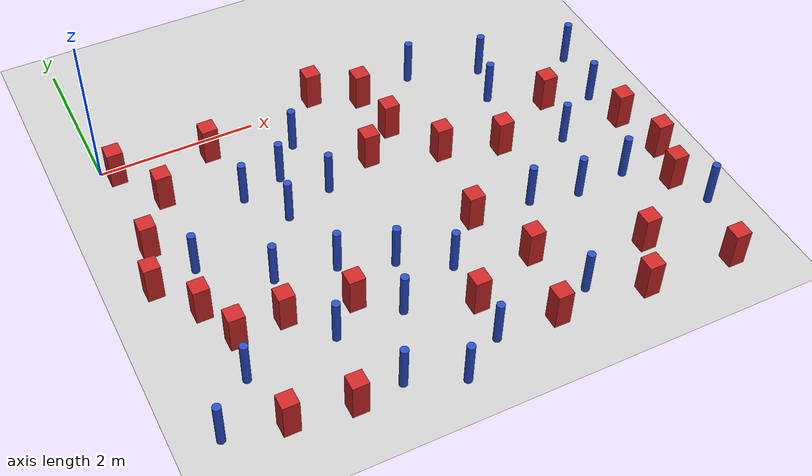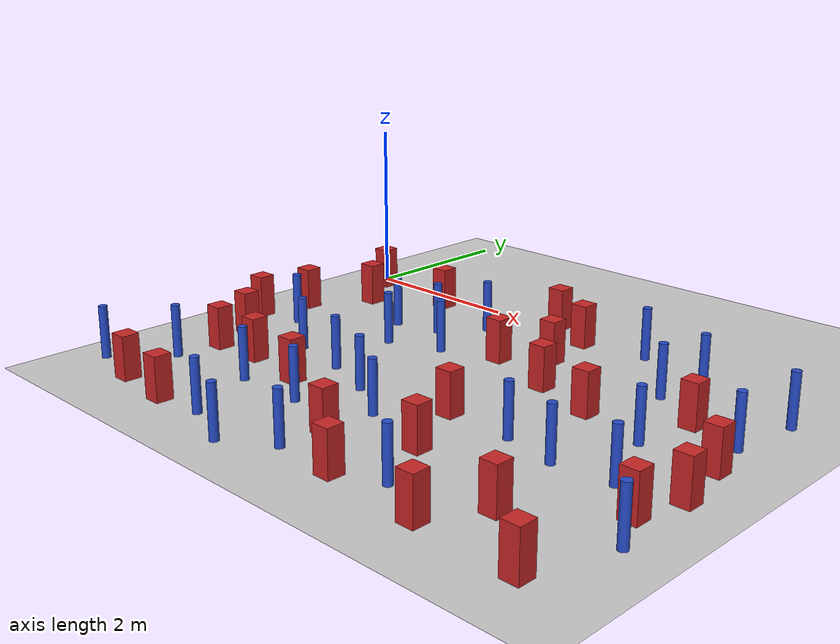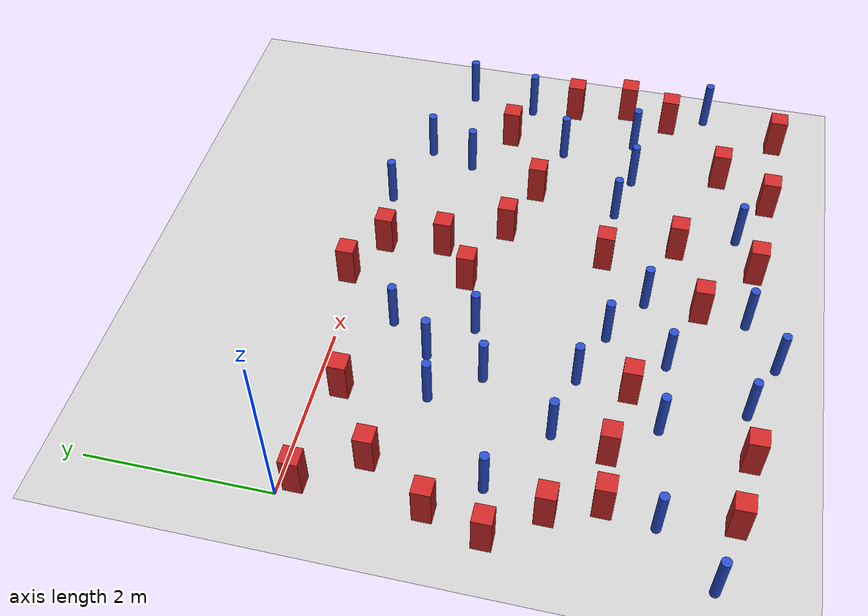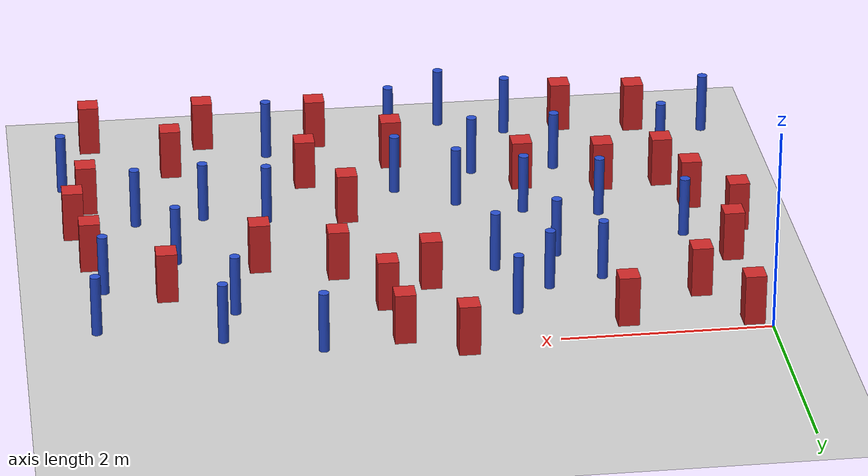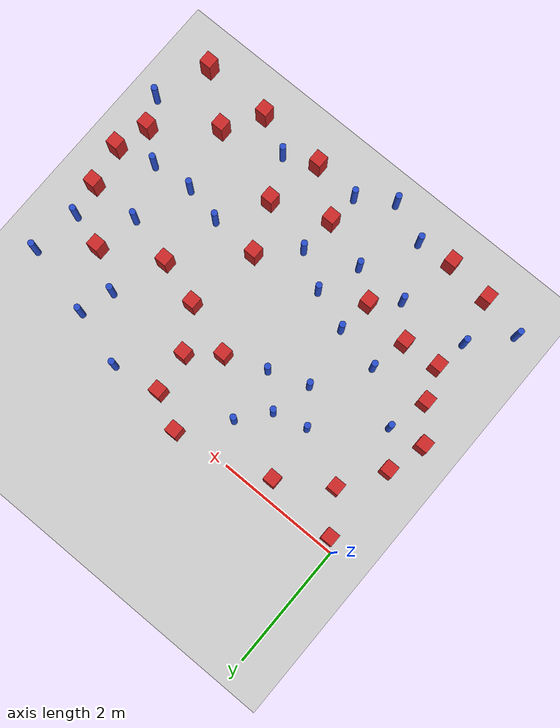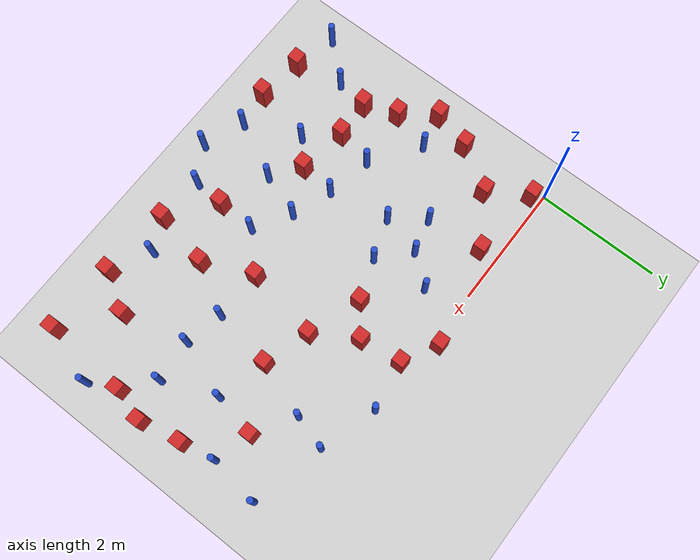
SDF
<sdf version="1.6">
 <world name="default">
  <model name="ground_plane">
   <static>1</static>
   <link name="link">
    <collision name="collision">
     <geometry><plane><normal>0 0 1</normal><size>100 100</size></plane></geometry>
     <surface><friction><ode><mu>100</mu><mu2>50</mu2></ode></friction></surface>
    </collision>
    <visual name="visual">
     <cast_shadows>0</cast_shadows>
     <geometry><plane><normal>0 0 1</normal><size>100 100</size></plane></geometry>
     <material>
      <ambient>1.0 1.0 1.0 1.0</ambient>
      <diffuse>0.8 0.8 0.8 1.0</diffuse>
      <specular>0.01 0.01 0.01 1.000000</specular>
     </material>
    </visual>
   </link>
  </model>
  <model name="NamedLocations">
   <static>true</static>
   <link name="DefaultStart"><pose>8.5 0 0 0 0 3.14</pose></link>
  </model>
  <model name="pole_obstacle6">
   <static>true</static>
   <pose>6.27253599688 -0.637736351606 2.88873142074e-08 -9.90536689837e-09 4.60219948989e-07 -1.2096599496e-07</pose>
   <link name="link">
    <pose>0 0 0.3 0 -0 0</pose>
    <inertial>
     <mass>1</mass>
     <inertia><ixx>0.145833</ixx><ixy>0</ixy><ixz>0</ixz><iyy>0.145833</iyy><iyz>0</iyz><izz>0.125</izz></inertia>
    </inertial>
    <collision name="collision">
     <geometry><cylinder><radius>0.05</radius><length>.6</length></cylinder></geometry>
    </collision>
    <visual name="visual">
     <geometry><cylinder><radius>0.05</radius><length>.6</length></cylinder></geometry>
     <material>
      <script><name>Gazebo/Blue</name><uri>file://media/materials/scripts/gazebo.material</uri></script>
     </material>
    </visual>
   </link>
  </model>
  <model name="square_post_obstacle11">
   <static>true</static>
   <pose>3.44342406219 -0.192606901467 8.22691968438e-08 7.2212513382e-06 -7.54495500217e-07 2.29674213826e-05</pose>
   <link name="link">
    <pose>0 0 0.25 0 -0 0</pose>
    <inertial>
     <mass>100</mass>
     <inertia>
      <ixx>0.166667</ixx>
      <ixy>0</ixy>
      <ixz>0</ixz>
      <iyy>0.166667</iyy>
      <iyz>0</iyz>
      <izz>0.166667</izz>
     </inertia>
    </inertial>
    <collision name="collision"><geometry><box><size>.2 .2 .5</size></box></geometry></collision>
    <visual name="visual">
     <geometry><box><size>.2 .2 .5</size></box></geometry>
     <material>
      <script><name>Gazebo/Red</name><uri>file://media/materials/scripts/gazebo.material</uri></script>
     </material>
    </visual>
   </link>
  </model>
  <model name="pole_obstacle15">
   <static>true</static>
   <pose>4.20658721971 -0.0656060145119 2.88873142074e-08 -9.90536689153e-09 4.60219949006e-07 -1.20965994951e-07</pose>
   <link name="link">
    <pose>0 0 0.3 0 -0 0</pose>
    <inertial>
     <mass>1</mass>
     <inertia><ixx>0.145833</ixx><ixy>0</ixy><ixz>0</ixz><iyy>0.145833</iyy><iyz>0</iyz><izz>0.125</izz></inertia>
    </inertial>
    <collision name="collision">
     <geometry><cylinder><radius>0.05</radius><length>.6</length></cylinder></geometry>
    </collision>
    <visual name="visual">
     <geometry><cylinder><radius>0.05</radius><length>.6</length></cylinder></geometry>
     <material>
      <script><name>Gazebo/Blue</name><uri>file://media/materials/scripts/gazebo.material</uri></script>
     </material>
    </visual>
   </link>
  </model>
  <model name="pole_obstacle16">
   <static>true</static>
   <pose>6.44915126913 -3.62196301448 2.88873142074e-08 -9.90536690245e-09 4.6021994898e-07 -1.20965994966e-07</pose>
   <link name="link">
    <pose>0 0 0.3 0 -0 0</pose>
    <inertial>
     <mass>1</mass>
     <inertia><ixx>0.145833</ixx><ixy>0</ixy><ixz>0</ixz><iyy>0.145833</iyy><iyz>0</iyz><izz>0.125</izz></inertia>
    </inertial>
    <collision name="collision">
     <geometry><cylinder><radius>0.05</radius><length>.6</length></cylinder></geometry>
    </collision>
    <visual name="visual">
     <geometry><cylinder><radius>0.05</radius><length>.6</length></cylinder></geometry>
     <material>
      <script><name>Gazebo/Blue</name><uri>file://media/materials/scripts/gazebo.material</uri></script>
     </material>
    </visual>
   </link>
  </model>
  <model name="square_post_obstacle18">
   <static>true</static>
   <pose>0.53533978241 -3.11377711182 8.22691968438e-08 7.2212513382e-06 -7.54495500217e-07 2.29674213826e-05</pose>
   <link name="link">
    <pose>0 0 0.25 0 -0 0</pose>
    <inertial>
     <mass>100</mass>
     <inertia>
      <ixx>0.166667</ixx>
      <ixy>0</ixy>
      <ixz>0</ixz>
      <iyy>0.166667</iyy>
      <iyz>0</iyz>
      <izz>0.166667</izz>
     </inertia>
    </inertial>
    <collision name="collision"><geometry><box><size>.2 .2 .5</size></box></geometry></collision>
    <visual name="visual">
     <geometry><box><size>.2 .2 .5</size></box></geometry>
     <material>
      <script><name>Gazebo/Red</name><uri>file://media/materials/scripts/gazebo.material</uri></script>
     </material>
    </visual>
   </link>
  </model>
  <model name="pole_obstacle26">
   <static>true</static>
   <pose>0.443160769518 -3.63857379925 2.88873142074e-08 -9.90536689663e-09 4.60219948993e-07 -1.20965994959e-07</pose>
   <link name="link">
    <pose>0 0 0.3 0 -0 0</pose>
    <inertial>
     <mass>1</mass>
     <inertia><ixx>0.145833</ixx><ixy>0</ixy><ixz>0</ixz><iyy>0.145833</iyy><iyz>0</iyz><izz>0.125</izz></inertia>
    </inertial>
    <collision name="collision">
     <geometry><cylinder><radius>0.05</radius><length>.6</length></cylinder></geometry>
    </collision>
    <visual name="visual">
     <geometry><cylinder><radius>0.05</radius><length>.6</length></cylinder></geometry>
     <material>
      <script><name>Gazebo/Blue</name><uri>file://media/materials/scripts/gazebo.material</uri></script>
     </material>
    </visual>
   </link>
  </model>
  <model name="pole_obstacle27">
   <static>true</static>
   <pose>1.25044944178 -2.49611178456 2.88873142074e-08 -9.90536689791e-09 4.6021994899e-07 -1.20965994959e-07</pose>
   <link name="link">
    <pose>0 0 0.3 0 -0 0</pose>
    <inertial>
     <mass>1</mass>
     <inertia><ixx>0.145833</ixx><ixy>0</ixy><ixz>0</ixz><iyy>0.145833</iyy><iyz>0</iyz><izz>0.125</izz></inertia>
    </inertial>
    <collision name="collision">
     <geometry><cylinder><radius>0.05</radius><length>.6</length></cylinder></geometry>
    </collision>
    <visual name="visual">
     <geometry><cylinder><radius>0.05</radius><length>.6</length></cylinder></geometry>
     <material>
      <script><name>Gazebo/Blue</name><uri>file://media/materials/scripts/gazebo.material</uri></script>
     </material>
    </visual>
   </link>
  </model>
  <model name="pole_obstacle28">
   <static>true</static>
   <pose>1.97701452245 -2.63980536934 2.88873142074e-08 -9.90536689941e-09 4.60219948987e-07 -1.20965994961e-07</pose>
   <link name="link">
    <pose>0 0 0.3 0 -0 0</pose>
    <inertial>
     <mass>1</mass>
     <inertia><ixx>0.145833</ixx><ixy>0</ixy><ixz>0</ixz><iyy>0.145833</iyy><iyz>0</iyz><izz>0.125</izz></inertia>
    </inertial>
    <collision name="collision">
     <geometry><cylinder><radius>0.05</radius><length>.6</length></cylinder></geometry>
    </collision>
    <visual name="visual">
     <geometry><cylinder><radius>0.05</radius><length>.6</length></cylinder></geometry>
     <material>
      <script><name>Gazebo/Blue</name><uri>file://media/materials/scripts/gazebo.material</uri></script>
     </material>
    </visual>
   </link>
  </model>
  <model name="square_post_obstacle27">
   <static>true</static>
   <pose>1.34927041516 -4.47156705304 8.22691968438e-08 7.2212513382e-06 -7.54495500217e-07 2.29674213826e-05</pose>
   <link name="link">
    <pose>0 0 0.25 0 -0 0</pose>
    <inertial>
     <mass>100</mass>
     <inertia>
      <ixx>0.166667</ixx>
      <ixy>0</ixy>
      <ixz>0</ixz>
      <iyy>0.166667</iyy>
      <iyz>0</iyz>
      <izz>0.166667</izz>
     </inertia>
    </inertial>
    <collision name="collision"><geometry><box><size>.2 .2 .5</size></box></geometry></collision>
    <visual name="visual">
     <geometry><box><size>.2 .2 .5</size></box></geometry>
     <material>
      <script><name>Gazebo/Red</name><uri>file://media/materials/scripts/gazebo.material</uri></script>
     </material>
    </visual>
   </link>
  </model>
  <model name="pole_obstacle39">
   <static>true</static>
   <pose>1.95557416629 -1.03568181372 2.88873142074e-08 -9.9053669074e-09 4.60219948968e-07 -1.20965994975e-07</pose>
   <link name="link">
    <pose>0 0 0.3 0 -0 0</pose>
    <inertial>
     <mass>1</mass>
     <inertia><ixx>0.145833</ixx><ixy>0</ixy><ixz>0</ixz><iyy>0.145833</iyy><iyz>0</iyz><izz>0.125</izz></inertia>
    </inertial>
    <collision name="collision">
     <geometry><cylinder><radius>0.05</radius><length>.6</length></cylinder></geometry>
    </collision>
    <visual name="visual">
     <geometry><cylinder><radius>0.05</radius><length>.6</length></cylinder></geometry>
     <material>
      <script><name>Gazebo/Blue</name><uri>file://media/materials/scripts/gazebo.material</uri></script>
     </material>
    </visual>
   </link>
  </model>
  <model name="square_post_obstacle42">
   <static>true</static>
   <pose>5.57363348183 -1.26492279231 8.22691968438e-08 7.2212513382e-06 -7.54495500217e-07 2.29674213826e-05</pose>
   <link name="link">
    <pose>0 0 0.25 0 -0 0</pose>
    <inertial>
     <mass>100</mass>
     <inertia>
      <ixx>0.166667</ixx>
      <ixy>0</ixy>
      <ixz>0</ixz>
      <iyy>0.166667</iyy>
      <iyz>0</iyz>
      <izz>0.166667</izz>
     </inertia>
    </inertial>
    <collision name="collision"><geometry><box><size>.2 .2 .5</size></box></geometry></collision>
    <visual name="visual">
     <geometry><box><size>.2 .2 .5</size></box></geometry>
     <material>
      <script><name>Gazebo/Red</name><uri>file://media/materials/scripts/gazebo.material</uri></script>
     </material>
    </visual>
   </link>
  </model>
  <model name="pole_obstacle59">
   <static>true</static>
   <pose>2.32423793874 -0.576681091294 2.88873142074e-08 -9.90536689285e-09 4.60219949002e-07 -1.20965994953e-07</pose>
   <link name="link">
    <pose>0 0 0.3 0 -0 0</pose>
    <inertial>
     <mass>1</mass>
     <inertia><ixx>0.145833</ixx><ixy>0</ixy><ixz>0</ixz><iyy>0.145833</iyy><iyz>0</iyz><izz>0.125</izz></inertia>
    </inertial>
    <collision name="collision">
     <geometry><cylinder><radius>0.05</radius><length>.6</length></cylinder></geometry>
    </collision>
    <visual name="visual">
     <geometry><cylinder><radius>0.05</radius><length>.6</length></cylinder></geometry>
     <material>
      <script><name>Gazebo/Blue</name><uri>file://media/materials/scripts/gazebo.material</uri></script>
     </material>
    </visual>
   </link>
  </model>
  <model name="square_post_obstacle46">
   <static>true</static>
   <pose>6.13246911608 -4.51069824366 8.22691968438e-08 7.22125133819e-06 -7.54495500217e-07 2.29674213826e-05</pose>
   <link name="link">
    <pose>0 0 0.25 0 -0 0</pose>
    <inertial>
     <mass>100</mass>
     <inertia>
      <ixx>0.166667</ixx>
      <ixy>0</ixy>
      <ixz>0</ixz>
      <iyy>0.166667</iyy>
      <iyz>0</iyz>
      <izz>0.166667</izz>
     </inertia>
    </inertial>
    <collision name="collision"><geometry><box><size>.2 .2 .5</size></box></geometry></collision>
    <visual name="visual">
     <geometry><box><size>.2 .2 .5</size></box></geometry>
     <material>
      <script><name>Gazebo/Red</name><uri>file://media/materials/scripts/gazebo.material</uri></script>
     </material>
    </visual>
   </link>
  </model>
  <model name="pole_obstacle61">
   <static>true</static>
   <pose>1.79540178664 -1.68147564117 2.88873142074e-08 -9.90536689672e-09 4.60219948993e-07 -1.20965994959e-07</pose>
   <link name="link">
    <pose>0 0 0.3 0 -0 0</pose>
    <inertial>
     <mass>1</mass>
     <inertia><ixx>0.145833</ixx><ixy>0</ixy><ixz>0</ixz><iyy>0.145833</iyy><iyz>0</iyz><izz>0.125</izz></inertia>
    </inertial>
    <collision name="collision">
     <geometry><cylinder><radius>0.05</radius><length>.6</length></cylinder></geometry>
    </collision>
    <visual name="visual">
     <geometry><cylinder><radius>0.05</radius><length>.6</length></cylinder></geometry>
     <material>
      <script><name>Gazebo/Blue</name><uri>file://media/materials/scripts/gazebo.material</uri></script>
     </material>
    </visual>
   </link>
  </model>
  <model name="square_post_obstacle47">
   <static>true</static>
   <pose>0.12163719077 -1.45845846594 8.22691968438e-08 7.2212513382e-06 -7.54495500217e-07 2.29674213826e-05</pose>
   <link name="link">
    <pose>0 0 0.25 0 -0 0</pose>
    <inertial>
     <mass>100</mass>
     <inertia>
      <ixx>0.166667</ixx>
      <ixy>0</ixy>
      <ixz>0</ixz>
      <iyy>0.166667</iyy>
      <iyz>0</iyz>
      <izz>0.166667</izz>
     </inertia>
    </inertial>
    <collision name="collision"><geometry><box><size>.2 .2 .5</size></box></geometry></collision>
    <visual name="visual">
     <geometry><box><size>.2 .2 .5</size></box></geometry>
     <material>
      <script><name>Gazebo/Red</name><uri>file://media/materials/scripts/gazebo.material</uri></script>
     </material>
    </visual>
   </link>
  </model>
  <model name="pole_obstacle62">
   <static>true</static>
   <pose>2.56557301405 -4.67350922247 2.88873142074e-08 -9.90536689859e-09 4.60219948989e-07 -1.20965994961e-07</pose>
   <link name="link">
    <pose>0 0 0.3 0 -0 0</pose>
    <inertial>
     <mass>1</mass>
     <inertia><ixx>0.145833</ixx><ixy>0</ixy><ixz>0</ixz><iyy>0.145833</iyy><iyz>0</iyz><izz>0.125</izz></inertia>
    </inertial>
    <collision name="collision">
     <geometry><cylinder><radius>0.05</radius><length>.6</length></cylinder></geometry>
    </collision>
    <visual name="visual">
     <geometry><cylinder><radius>0.05</radius><length>.6</length></cylinder></geometry>
     <material>
      <script><name>Gazebo/Blue</name><uri>file://media/materials/scripts/gazebo.material</uri></script>
     </material>
    </visual>
   </link>
  </model>
  <model name="pole_obstacle65">
   <static>true</static>
   <pose>2.61288295089 -2.87004977694 2.88873142074e-08 -9.90536690232e-09 4.6021994898e-07 -1.20965994968e-07</pose>
   <link name="link">
    <pose>0 0 0.3 0 -0 0</pose>
    <inertial>
     <mass>1</mass>
     <inertia><ixx>0.145833</ixx><ixy>0</ixy><ixz>0</ixz><iyy>0.145833</iyy><iyz>0</iyz><izz>0.125</izz></inertia>
    </inertial>
    <collision name="collision">
     <geometry><cylinder><radius>0.05</radius><length>.6</length></cylinder></geometry>
    </collision>
    <visual name="visual">
     <geometry><cylinder><radius>0.05</radius><length>.6</length></cylinder></geometry>
     <material>
      <script><name>Gazebo/Blue</name><uri>file://media/materials/scripts/gazebo.material</uri></script>
     </material>
    </visual>
   </link>
  </model>
  <model name="square_post_obstacle52">
   <static>true</static>
   <pose>5.35603697419 -3.87359024264 8.22691968438e-08 7.2212513382e-06 -7.54495500217e-07 2.29674213826e-05</pose>
   <link name="link">
    <pose>0 0 0.25 0 -0 0</pose>
    <inertial>
     <mass>100</mass>
     <inertia>
      <ixx>0.166667</ixx>
      <ixy>0</ixy>
      <ixz>0</ixz>
      <iyy>0.166667</iyy>
      <iyz>0</iyz>
      <izz>0.166667</izz>
     </inertia>
    </inertial>
    <collision name="collision"><geometry><box><size>.2 .2 .5</size></box></geometry></collision>
    <visual name="visual">
     <geometry><box><size>.2 .2 .5</size></box></geometry>
     <material>
      <script><name>Gazebo/Red</name><uri>file://media/materials/scripts/gazebo.material</uri></script>
     </material>
    </visual>
   </link>
  </model>
  <model name="square_post_obstacle56">
   <static>true</static>
   <pose>4.65460099179 -1.74797631367 8.22691968438e-08 7.2212513382e-06 -7.54495500217e-07 2.29674213826e-05</pose>
   <link name="link">
    <pose>0 0 0.25 0 -0 0</pose>
    <inertial>
     <mass>100</mass>
     <inertia>
      <ixx>0.166667</ixx>
      <ixy>0</ixy>
      <ixz>0</ixz>
      <iyy>0.166667</iyy>
      <iyz>0</iyz>
      <izz>0.166667</izz>
     </inertia>
    </inertial>
    <collision name="collision"><geometry><box><size>.2 .2 .5</size></box></geometry></collision>
    <visual name="visual">
     <geometry><box><size>.2 .2 .5</size></box></geometry>
     <material>
      <script><name>Gazebo/Red</name><uri>file://media/materials/scripts/gazebo.material</uri></script>
     </material>
    </visual>
   </link>
  </model>
  <model name="square_post_obstacle62">
   <static>true</static>
   <pose>1.13236847518 -3.08265025337 8.22691968438e-08 7.2212513382e-06 -7.54495500217e-07 2.29674213826e-05</pose>
   <link name="link">
    <pose>0 0 0.25 0 -0 0</pose>
    <inertial>
     <mass>100</mass>
     <inertia>
      <ixx>0.166667</ixx>
      <ixy>0</ixy>
      <ixz>0</ixz>
      <iyy>0.166667</iyy>
      <iyz>0</iyz>
      <izz>0.166667</izz>
     </inertia>
    </inertial>
    <collision name="collision"><geometry><box><size>.2 .2 .5</size></box></geometry></collision>
    <visual name="visual">
     <geometry><box><size>.2 .2 .5</size></box></geometry>
     <material>
      <script><name>Gazebo/Red</name><uri>file://media/materials/scripts/gazebo.material</uri></script>
     </material>
    </visual>
   </link>
  </model>
  <model name="pole_obstacle74">
   <static>true</static>
   <pose>0.500238732774 -1.95959913843 2.88873142074e-08 -9.90536689881e-09 4.60219948988e-07 -1.20965994962e-07</pose>
   <link name="link">
    <pose>0 0 0.3 0 -0 0</pose>
    <inertial>
     <mass>1</mass>
     <inertia><ixx>0.145833</ixx><ixy>0</ixy><ixz>0</ixz><iyy>0.145833</iyy><iyz>0</iyz><izz>0.125</izz></inertia>
    </inertial>
    <collision name="collision">
     <geometry><cylinder><radius>0.05</radius><length>.6</length></cylinder></geometry>
    </collision>
    <visual name="visual">
     <geometry><cylinder><radius>0.05</radius><length>.6</length></cylinder></geometry>
     <material>
      <script><name>Gazebo/Blue</name><uri>file://media/materials/scripts/gazebo.material</uri></script>
     </material>
    </visual>
   </link>
  </model>
  <model name="pole_obstacle83">
   <static>true</static>
   <pose>2.37035938175 -3.54299724872 2.88873142074e-08 -9.90536690232e-09 4.6021994898e-07 -1.20965994968e-07</pose>
   <link name="link">
    <pose>0 0 0.3 0 -0 0</pose>
    <inertial>
     <mass>1</mass>
     <inertia><ixx>0.145833</ixx><ixy>0</ixy><ixz>0</ixz><iyy>0.145833</iyy><iyz>0</iyz><izz>0.125</izz></inertia>
    </inertial>
    <collision name="collision">
     <geometry><cylinder><radius>0.05</radius><length>.6</length></cylinder></geometry>
    </collision>
    <visual name="visual">
     <geometry><cylinder><radius>0.05</radius><length>.6</length></cylinder></geometry>
     <material>
      <script><name>Gazebo/Blue</name><uri>file://media/materials/scripts/gazebo.material</uri></script>
     </material>
    </visual>
   </link>
  </model>
  <model name="pole_obstacle84">
   <static>true</static>
   <pose>5.1073528498 -2.84640620946 2.88873142074e-08 -9.90536690245e-09 4.6021994898e-07 -1.20965994966e-07</pose>
   <link name="link">
    <pose>0 0 0.3 0 -0 0</pose>
    <inertial>
     <mass>1</mass>
     <inertia><ixx>0.145833</ixx><ixy>0</ixy><ixz>0</ixz><iyy>0.145833</iyy><iyz>0</iyz><izz>0.125</izz></inertia>
    </inertial>
    <collision name="collision">
     <geometry><cylinder><radius>0.05</radius><length>.6</length></cylinder></geometry>
    </collision>
    <visual name="visual">
     <geometry><cylinder><radius>0.05</radius><length>.6</length></cylinder></geometry>
     <material>
      <script><name>Gazebo/Blue</name><uri>file://media/materials/scripts/gazebo.material</uri></script>
     </material>
    </visual>
   </link>
  </model>
  <model name="square_post_obstacle94">
   <static>true</static>
   <pose>3.71553837978 -2.68710303454 8.22691968438e-08 7.2212513382e-06 -7.54495500217e-07 2.29674213826e-05</pose>
   <link name="link">
    <pose>0 0 0.25 0 -0 0</pose>
    <inertial>
     <mass>100</mass>
     <inertia>
      <ixx>0.166667</ixx>
      <ixy>0</ixy>
      <ixz>0</ixz>
      <iyy>0.166667</iyy>
      <iyz>0</iyz>
      <izz>0.166667</izz>
     </inertia>
    </inertial>
    <collision name="collision"><geometry><box><size>.2 .2 .5</size></box></geometry></collision>
    <visual name="visual">
     <geometry><box><size>.2 .2 .5</size></box></geometry>
     <material>
      <script><name>Gazebo/Red</name><uri>file://media/materials/scripts/gazebo.material</uri></script>
     </material>
    </visual>
   </link>
  </model>
  <model name="square_post_obstacle96">
   <static>true</static>
   <pose>6.38773015518 -2.6380050252 8.22691968438e-08 7.2212513382e-06 -7.54495500217e-07 2.29674213826e-05</pose>
   <link name="link">
    <pose>0 0 0.25 0 -0 0</pose>
    <inertial>
     <mass>100</mass>
     <inertia>
      <ixx>0.166667</ixx>
      <ixy>0</ixy>
      <ixz>0</ixz>
      <iyy>0.166667</iyy>
      <iyz>0</iyz>
      <izz>0.166667</izz>
     </inertia>
    </inertial>
    <collision name="collision"><geometry><box><size>.2 .2 .5</size></box></geometry></collision>
    <visual name="visual">
     <geometry><box><size>.2 .2 .5</size></box></geometry>
     <material>
      <script><name>Gazebo/Red</name><uri>file://media/materials/scripts/gazebo.material</uri></script>
     </material>
    </visual>
   </link>
  </model>
  <model name="square_post_obstacle98">
   <static>true</static>
   <pose>0.609797494129 -4.3781889553 8.22691968438e-08 7.22125133819e-06 -7.54495500217e-07 2.29674213826e-05</pose>
   <link name="link">
    <pose>0 0 0.25 0 -0 0</pose>
    <inertial>
     <mass>100</mass>
     <inertia>
      <ixx>0.166667</ixx>
      <ixy>0</ixy>
      <ixz>0</ixz>
      <iyy>0.166667</iyy>
      <iyz>0</iyz>
      <izz>0.166667</izz>
     </inertia>
    </inertial>
    <collision name="collision"><geometry><box><size>.2 .2 .5</size></box></geometry></collision>
    <visual name="visual">
     <geometry><box><size>.2 .2 .5</size></box></geometry>
     <material>
      <script><name>Gazebo/Red</name><uri>file://media/materials/scripts/gazebo.material</uri></script>
     </material>
    </visual>
   </link>
  </model>
  <model name="pole_obstacle108">
   <static>true</static>
   <pose>4.95667891097 -0.880523725206 2.88873142074e-08 -9.90536689837e-09 4.60219948989e-07 -1.2096599496e-07</pose>
   <link name="link">
    <pose>0 0 0.3 0 -0 0</pose>
    <inertial>
     <mass>1</mass>
     <inertia><ixx>0.145833</ixx><ixy>0</ixy><ixz>0</ixz><iyy>0.145833</iyy><iyz>0</iyz><izz>0.125</izz></inertia>
    </inertial>
    <collision name="collision">
     <geometry><cylinder><radius>0.05</radius><length>.6</length></cylinder></geometry>
    </collision>
    <visual name="visual">
     <geometry><cylinder><radius>0.05</radius><length>.6</length></cylinder></geometry>
     <material>
      <script><name>Gazebo/Blue</name><uri>file://media/materials/scripts/gazebo.material</uri></script>
     </material>
    </visual>
   </link>
  </model>
  <model name="square_post_obstacle108">
   <static>true</static>
   <pose>1.33389802444 -0.276255303737 8.22691968438e-08 7.22125133819e-06 -7.54495500217e-07 2.29674213826e-05</pose>
   <link name="link">
    <pose>0 0 0.25 0 -0 0</pose>
    <inertial>
     <mass>100</mass>
     <inertia>
      <ixx>0.166667</ixx>
      <ixy>0</ixy>
      <ixz>0</ixz>
      <iyy>0.166667</iyy>
      <iyz>0</iyz>
      <izz>0.166667</izz>
     </inertia>
    </inertial>
    <collision name="collision"><geometry><box><size>.2 .2 .5</size></box></geometry></collision>
    <visual name="visual">
     <geometry><box><size>.2 .2 .5</size></box></geometry>
     <material>
      <script><name>Gazebo/Red</name><uri>file://media/materials/scripts/gazebo.material</uri></script>
     </material>
    </visual>
   </link>
  </model>
  <model name="pole_obstacle113">
   <static>true</static>
   <pose>1.42402503109 -1.17280027444 2.88873142074e-08 -9.90536689672e-09 4.60219948993e-07 -1.20965994959e-07</pose>
   <link name="link">
    <pose>0 0 0.3 0 -0 0</pose>
    <inertial>
     <mass>1</mass>
     <inertia><ixx>0.145833</ixx><ixy>0</ixy><ixz>0</ixz><iyy>0.145833</iyy><iyz>0</iyz><izz>0.125</izz></inertia>
    </inertial>
    <collision name="collision">
     <geometry><cylinder><radius>0.05</radius><length>.6</length></cylinder></geometry>
    </collision>
    <visual name="visual">
     <geometry><cylinder><radius>0.05</radius><length>.6</length></cylinder></geometry>
     <material>
      <script><name>Gazebo/Blue</name><uri>file://media/materials/scripts/gazebo.material</uri></script>
     </material>
    </visual>
   </link>
  </model>
  <model name="pole_obstacle115">
   <static>true</static>
   <pose>1.54245256722 -3.54941184741 2.88873142074e-08 -9.90536689791e-09 4.6021994899e-07 -1.20965994959e-07</pose>
   <link name="link">
    <pose>0 0 0.3 0 -0 0</pose>
    <inertial>
     <mass>1</mass>
     <inertia><ixx>0.145833</ixx><ixy>0</ixy><ixz>0</ixz><iyy>0.145833</iyy><iyz>0</iyz><izz>0.125</izz></inertia>
    </inertial>
    <collision name="collision">
     <geometry><cylinder><radius>0.05</radius><length>.6</length></cylinder></geometry>
    </collision>
    <visual name="visual">
     <geometry><cylinder><radius>0.05</radius><length>.6</length></cylinder></geometry>
     <material>
      <script><name>Gazebo/Blue</name><uri>file://media/materials/scripts/gazebo.material</uri></script>
     </material>
    </visual>
   </link>
  </model>
  <model name="square_post_obstacle120">
   <static>true</static>
   <pose>3.86353233844 -4.3803332028 8.22691968438e-08 7.2212513382e-06 -7.54495500217e-07 2.29674213826e-05</pose>
   <link name="link">
    <pose>0 0 0.25 0 -0 0</pose>
    <inertial>
     <mass>100</mass>
     <inertia>
      <ixx>0.166667</ixx>
      <ixy>0</ixy>
      <ixz>0</ixz>
      <iyy>0.166667</iyy>
      <iyz>0</iyz>
      <izz>0.166667</izz>
     </inertia>
    </inertial>
    <collision name="collision"><geometry><box><size>.2 .2 .5</size></box></geometry></collision>
    <visual name="visual">
     <geometry><box><size>.2 .2 .5</size></box></geometry>
     <material>
      <script><name>Gazebo/Red</name><uri>file://media/materials/scripts/gazebo.material</uri></script>
     </material>
    </visual>
   </link>
  </model>
  <model name="pole_obstacle121">
   <static>true</static>
   <pose>5.77365833471 -2.79167881731 2.88873142074e-08 -9.90536690245e-09 4.6021994898e-07 -1.20965994966e-07</pose>
   <link name="link">
    <pose>0 0 0.3 0 -0 0</pose>
    <inertial>
     <mass>1</mass>
     <inertia><ixx>0.145833</ixx><ixy>0</ixy><ixz>0</ixz><iyy>0.145833</iyy><iyz>0</iyz><izz>0.125</izz></inertia>
    </inertial>
    <collision name="collision">
     <geometry><cylinder><radius>0.05</radius><length>.6</length></cylinder></geometry>
    </collision>
    <visual name="visual">
     <geometry><cylinder><radius>0.05</radius><length>.6</length></cylinder></geometry>
     <material>
      <script><name>Gazebo/Blue</name><uri>file://media/materials/scripts/gazebo.material</uri></script>
     </material>
    </visual>
   </link>
  </model>
  <model name="square_post_obstacle122">
   <static>true</static>
   <pose>3.07030980465 -1.22289831954 8.22691968438e-08 7.2212513382e-06 -7.54495500217e-07 2.29674213826e-05</pose>
   <link name="link">
    <pose>0 0 0.25 0 -0 0</pose>
    <inertial>
     <mass>100</mass>
     <inertia>
      <ixx>0.166667</ixx>
      <ixy>0</ixy>
      <ixz>0</ixz>
      <iyy>0.166667</iyy>
      <iyz>0</iyz>
      <izz>0.166667</izz>
     </inertia>
    </inertial>
    <collision name="collision"><geometry><box><size>.2 .2 .5</size></box></geometry></collision>
    <visual name="visual">
     <geometry><box><size>.2 .2 .5</size></box></geometry>
     <material>
      <script><name>Gazebo/Red</name><uri>file://media/materials/scripts/gazebo.material</uri></script>
     </material>
    </visual>
   </link>
  </model>
  <model name="square_post_obstacle124">
   <static>true</static>
   <pose>1.92237601761 -3.20183725591 8.22691968438e-08 7.2212513382e-06 -7.54495500217e-07 2.29674213826e-05</pose>
   <link name="link">
    <pose>0 0 0.25 0 -0 0</pose>
    <inertial>
     <mass>100</mass>
     <inertia>
      <ixx>0.166667</ixx>
      <ixy>0</ixy>
      <ixz>0</ixz>
      <iyy>0.166667</iyy>
      <iyz>0</iyz>
      <izz>0.166667</izz>
     </inertia>
    </inertial>
    <collision name="collision"><geometry><box><size>.2 .2 .5</size></box></geometry></collision>
    <visual name="visual">
     <geometry><box><size>.2 .2 .5</size></box></geometry>
     <material>
      <script><name>Gazebo/Red</name><uri>file://media/materials/scripts/gazebo.material</uri></script>
     </material>
    </visual>
   </link>
  </model>
  <model name="square_post_obstacle130">
   <static>true</static>
   <pose>3.92340226886 -1.51888295602 8.22691968438e-08 7.2212513382e-06 -7.54495500217e-07 2.29674213826e-05</pose>
   <link name="link">
    <pose>0 0 0.25 0 -0 0</pose>
    <inertial>
     <mass>100</mass>
     <inertia>
      <ixx>0.166667</ixx>
      <ixy>0</ixy>
      <ixz>0</ixz>
      <iyy>0.166667</iyy>
      <iyz>0</iyz>
      <izz>0.166667</izz>
     </inertia>
    </inertial>
    <collision name="collision"><geometry><box><size>.2 .2 .5</size></box></geometry></collision>
    <visual name="visual">
     <geometry><box><size>.2 .2 .5</size></box></geometry>
     <material>
      <script><name>Gazebo/Red</name><uri>file://media/materials/scripts/gazebo.material</uri></script>
     </material>
    </visual>
   </link>
  </model>
  <model name="pole_obstacle140">
   <static>true</static>
   <pose>3.18119844155 -3.21917200799 2.88873142074e-08 -9.90536690232e-09 4.6021994898e-07 -1.20965994968e-07</pose>
   <link name="link">
    <pose>0 0 0.3 0 -0 0</pose>
    <inertial>
     <mass>1</mass>
     <inertia><ixx>0.145833</ixx><ixy>0</ixy><ixz>0</ixz><iyy>0.145833</iyy><iyz>0</iyz><izz>0.125</izz></inertia>
    </inertial>
    <collision name="collision">
     <geometry><cylinder><radius>0.05</radius><length>.6</length></cylinder></geometry>
    </collision>
    <visual name="visual">
     <geometry><cylinder><radius>0.05</radius><length>.6</length></cylinder></geometry>
     <material>
      <script><name>Gazebo/Blue</name><uri>file://media/materials/scripts/gazebo.material</uri></script>
     </material>
    </visual>
   </link>
  </model>
  <model name="pole_obstacle151">
   <static>true</static>
   <pose>2.41806348518 -1.46427201735 2.88873142074e-08 -9.90536689395e-09 4.60219949e-07 -1.20965994953e-07</pose>
   <link name="link">
    <pose>0 0 0.3 0 -0 0</pose>
    <inertial>
     <mass>1</mass>
     <inertia><ixx>0.145833</ixx><ixy>0</ixy><ixz>0</ixz><iyy>0.145833</iyy><iyz>0</iyz><izz>0.125</izz></inertia>
    </inertial>
    <collision name="collision">
     <geometry><cylinder><radius>0.05</radius><length>.6</length></cylinder></geometry>
    </collision>
    <visual name="visual">
     <geometry><cylinder><radius>0.05</radius><length>.6</length></cylinder></geometry>
     <material>
      <script><name>Gazebo/Blue</name><uri>file://media/materials/scripts/gazebo.material</uri></script>
     </material>
    </visual>
   </link>
  </model>
  <model name="square_post_obstacle153">
   <static>true</static>
   <pose>4.05371934971 -3.47938743968 8.22691968438e-08 7.2212513382e-06 -7.54495500217e-07 2.29674213826e-05</pose>
   <link name="link">
    <pose>0 0 0.25 0 -0 0</pose>
    <inertial>
     <mass>100</mass>
     <inertia>
      <ixx>0.166667</ixx>
      <ixy>0</ixy>
      <ixz>0</ixz>
      <iyy>0.166667</iyy>
      <iyz>0</iyz>
      <izz>0.166667</izz>
     </inertia>
    </inertial>
    <collision name="collision"><geometry><box><size>.2 .2 .5</size></box></geometry></collision>
    <visual name="visual">
     <geometry><box><size>.2 .2 .5</size></box></geometry>
     <material>
      <script><name>Gazebo/Red</name><uri>file://media/materials/scripts/gazebo.material</uri></script>
     </material>
    </visual>
   </link>
  </model>
  <model name="pole_obstacle159">
   <static>true</static>
   <pose>4.49632705448 -2.71722082482 2.88873142074e-08 -9.90536690245e-09 4.6021994898e-07 -1.20965994966e-07</pose>
   <link name="link">
    <pose>0 0 0.3 0 -0 0</pose>
    <inertial>
     <mass>1</mass>
     <inertia><ixx>0.145833</ixx><ixy>0</ixy><ixz>0</ixz><iyy>0.145833</iyy><iyz>0</iyz><izz>0.125</izz></inertia>
    </inertial>
    <collision name="collision">
     <geometry><cylinder><radius>0.05</radius><length>.6</length></cylinder></geometry>
    </collision>
    <visual name="visual">
     <geometry><cylinder><radius>0.05</radius><length>.6</length></cylinder></geometry>
     <material>
      <script><name>Gazebo/Blue</name><uri>file://media/materials/scripts/gazebo.material</uri></script>
     </material>
    </visual>
   </link>
  </model>
  <model name="pole_obstacle162">
   <static>true</static>
   <pose>3.11532776529 -4.33285320249 2.88873142074e-08 -9.90536689859e-09 4.60219948989e-07 -1.20965994961e-07</pose>
   <link name="link">
    <pose>0 0 0.3 0 -0 0</pose>
    <inertial>
     <mass>1</mass>
     <inertia><ixx>0.145833</ixx><ixy>0</ixy><ixz>0</ixz><iyy>0.145833</iyy><iyz>0</iyz><izz>0.125</izz></inertia>
    </inertial>
    <collision name="collision">
     <geometry><cylinder><radius>0.05</radius><length>.6</length></cylinder></geometry>
    </collision>
    <visual name="visual">
     <geometry><cylinder><radius>0.05</radius><length>.6</length></cylinder></geometry>
     <material>
      <script><name>Gazebo/Blue</name><uri>file://media/materials/scripts/gazebo.material</uri></script>
     </material>
    </visual>
   </link>
  </model>
  <model name="square_post_obstacle154">
   <static>true</static>
   <pose>6.25989792247 -1.97180245266 8.22691968438e-08 7.2212513382e-06 -7.54495500217e-07 2.29674213826e-05</pose>
   <link name="link">
    <pose>0 0 0.25 0 -0 0</pose>
    <inertial>
     <mass>100</mass>
     <inertia>
      <ixx>0.166667</ixx>
      <ixy>0</ixy>
      <ixz>0</ixz>
      <iyy>0.166667</iyy>
      <iyz>0</iyz>
      <izz>0.166667</izz>
     </inertia>
    </inertial>
    <collision name="collision"><geometry><box><size>.2 .2 .5</size></box></geometry></collision>
    <visual name="visual">
     <geometry><box><size>.2 .2 .5</size></box></geometry>
     <material>
      <script><name>Gazebo/Red</name><uri>file://media/materials/scripts/gazebo.material</uri></script>
     </material>
    </visual>
   </link>
  </model>
  <model name="square_post_obstacle166">
   <static>true</static>
   <pose>0.55386468401 -0.776315525793 8.22691968438e-08 7.2212513382e-06 -7.54495500217e-07 2.29674213826e-05</pose>
   <link name="link">
    <pose>0 0 0.25 0 -0 0</pose>
    <inertial>
     <mass>100</mass>
     <inertia>
      <ixx>0.166667</ixx>
      <ixy>0</ixy>
      <ixz>0</ixz>
      <iyy>0.166667</iyy>
      <iyz>0</iyz>
      <izz>0.166667</izz>
     </inertia>
    </inertial>
    <collision name="collision"><geometry><box><size>.2 .2 .5</size></box></geometry></collision>
    <visual name="visual">
     <geometry><box><size>.2 .2 .5</size></box></geometry>
     <material>
      <script><name>Gazebo/Red</name><uri>file://media/materials/scripts/gazebo.material</uri></script>
     </material>
    </visual>
   </link>
  </model>
  <model name="square_post_obstacle171">
   <static>true</static>
   <pose>6.23219858331 -3.17108723489 8.22691968438e-08 7.2212513382e-06 -7.54495500217e-07 2.29674213826e-05</pose>
   <link name="link">
    <pose>0 0 0.25 0 -0 0</pose>
    <inertial>
     <mass>100</mass>
     <inertia>
      <ixx>0.166667</ixx>
      <ixy>0</ixy>
      <ixz>0</ixz>
      <iyy>0.166667</iyy>
      <iyz>0</iyz>
      <izz>0.166667</izz>
     </inertia>
    </inertial>
    <collision name="collision"><geometry><box><size>.2 .2 .5</size></box></geometry></collision>
    <visual name="visual">
     <geometry><box><size>.2 .2 .5</size></box></geometry>
     <material>
      <script><name>Gazebo/Red</name><uri>file://media/materials/scripts/gazebo.material</uri></script>
     </material>
    </visual>
   </link>
  </model>
  <model name="pole_obstacle170">
   <static>true</static>
   <pose>-0.0852292676665 -4.22491063104 2.88873142074e-08 -9.90536689804e-09 4.6021994899e-07 -1.2096599496e-07</pose>
   <link name="link">
    <pose>0 0 0.3 0 -0 0</pose>
    <inertial>
     <mass>1</mass>
     <inertia><ixx>0.145833</ixx><ixy>0</ixy><ixz>0</ixz><iyy>0.145833</iyy><iyz>0</iyz><izz>0.125</izz></inertia>
    </inertial>
    <collision name="collision">
     <geometry><cylinder><radius>0.05</radius><length>.6</length></cylinder></geometry>
    </collision>
    <visual name="visual">
     <geometry><cylinder><radius>0.05</radius><length>.6</length></cylinder></geometry>
     <material>
      <script><name>Gazebo/Blue</name><uri>file://media/materials/scripts/gazebo.material</uri></script>
     </material>
    </visual>
   </link>
  </model>
  <model name="pole_obstacle171">
   <static>true</static>
   <pose>4.37156854101 -4.15251762419 2.88873142074e-08 -9.90536690842e-09 4.60219948965e-07 -1.20965994976e-07</pose>
   <link name="link">
    <pose>0 0 0.3 0 -0 0</pose>
    <inertial>
     <mass>1</mass>
     <inertia><ixx>0.145833</ixx><ixy>0</ixy><ixz>0</ixz><iyy>0.145833</iyy><iyz>0</iyz><izz>0.125</izz></inertia>
    </inertial>
    <collision name="collision">
     <geometry><cylinder><radius>0.05</radius><length>.6</length></cylinder></geometry>
    </collision>
    <visual name="visual">
     <geometry><cylinder><radius>0.05</radius><length>.6</length></cylinder></geometry>
     <material>
      <script><name>Gazebo/Blue</name><uri>file://media/materials/scripts/gazebo.material</uri></script>
     </material>
    </visual>
   </link>
  </model>
  <model name="pole_obstacle175">
   <static>true</static>
   <pose>6.16162077921 -1.43386622294 2.88873142074e-08 -9.90536689445e-09 4.60219948999e-07 -1.20965994956e-07</pose>
   <link name="link">
    <pose>0 0 0.3 0 -0 0</pose>
    <inertial>
     <mass>1</mass>
     <inertia><ixx>0.145833</ixx><ixy>0</ixy><ixz>0</ixz><iyy>0.145833</iyy><iyz>0</iyz><izz>0.125</izz></inertia>
    </inertial>
    <collision name="collision">
     <geometry><cylinder><radius>0.05</radius><length>.6</length></cylinder></geometry>
    </collision>
    <visual name="visual">
     <geometry><cylinder><radius>0.05</radius><length>.6</length></cylinder></geometry>
     <material>
      <script><name>Gazebo/Blue</name><uri>file://media/materials/scripts/gazebo.material</uri></script>
     </material>
    </visual>
   </link>
  </model>
  <model name="square_post_obstacle175">
   <static>true</static>
   <pose>3.5256726151 -0.857673649089 8.22691968438e-08 7.2212513382e-06 -7.54495500217e-07 2.29674213826e-05</pose>
   <link name="link">
    <pose>0 0 0.25 0 -0 0</pose>
    <inertial>
     <mass>100</mass>
     <inertia>
      <ixx>0.166667</ixx>
      <ixy>0</ixy>
      <ixz>0</ixz>
      <iyy>0.166667</iyy>
      <iyz>0</iyz>
      <izz>0.166667</izz>
     </inertia>
    </inertial>
    <collision name="collision"><geometry><box><size>.2 .2 .5</size></box></geometry></collision>
    <visual name="visual">
     <geometry><box><size>.2 .2 .5</size></box></geometry>
     <material>
      <script><name>Gazebo/Red</name><uri>file://media/materials/scripts/gazebo.material</uri></script>
     </material>
    </visual>
   </link>
  </model>
  <model name="pole_obstacle180">
   <static>true</static>
   <pose>5.11571978966 -0.348294049912 2.88873142074e-08 -9.90536689981e-09 4.60219948986e-07 -1.20965994962e-07</pose>
   <link name="link">
    <pose>0 0 0.3 0 -0 0</pose>
    <inertial>
     <mass>1</mass>
     <inertia><ixx>0.145833</ixx><ixy>0</ixy><ixz>0</ixz><iyy>0.145833</iyy><iyz>0</iyz><izz>0.125</izz></inertia>
    </inertial>
    <collision name="collision">
     <geometry><cylinder><radius>0.05</radius><length>.6</length></cylinder></geometry>
    </collision>
    <visual name="visual">
     <geometry><cylinder><radius>0.05</radius><length>.6</length></cylinder></geometry>
     <material>
      <script><name>Gazebo/Blue</name><uri>file://media/materials/scripts/gazebo.material</uri></script>
     </material>
    </visual>
   </link>
  </model>
  <model name="square_post_obstacle191">
   <static>true</static>
   <pose>4.99244560864 -4.46647624353 8.22691968438e-08 7.2212513382e-06 -7.54495500217e-07 2.29674213826e-05</pose>
   <link name="link">
    <pose>0 0 0.25 0 -0 0</pose>
    <inertial>
     <mass>100</mass>
     <inertia>
      <ixx>0.166667</ixx>
      <ixy>0</ixy>
      <ixz>0</ixz>
      <iyy>0.166667</iyy>
      <iyz>0</iyz>
      <izz>0.166667</izz>
     </inertia>
    </inertial>
    <collision name="collision"><geometry><box><size>.2 .2 .5</size></box></geometry></collision>
    <visual name="visual">
     <geometry><box><size>.2 .2 .5</size></box></geometry>
     <material>
      <script><name>Gazebo/Red</name><uri>file://media/materials/scripts/gazebo.material</uri></script>
     </material>
    </visual>
   </link>
  </model>
  <model name="pole_obstacle187">
   <static>true</static>
   <pose>5.43675715045 -1.95479450778 2.88873142074e-08 -9.90536689117e-09 4.60219949006e-07 -1.20965994949e-07</pose>
   <link name="link">
    <pose>0 0 0.3 0 -0 0</pose>
    <inertial>
     <mass>1</mass>
     <inertia><ixx>0.145833</ixx><ixy>0</ixy><ixz>0</ixz><iyy>0.145833</iyy><iyz>0</iyz><izz>0.125</izz></inertia>
    </inertial>
    <collision name="collision">
     <geometry><cylinder><radius>0.05</radius><length>.6</length></cylinder></geometry>
    </collision>
    <visual name="visual">
     <geometry><cylinder><radius>0.05</radius><length>.6</length></cylinder></geometry>
     <material>
      <script><name>Gazebo/Blue</name><uri>file://media/materials/scripts/gazebo.material</uri></script>
     </material>
    </visual>
   </link>
  </model>
  <model name="pole_obstacle189">
   <static>true</static>
   <pose>1.91990672941 -4.41336717544 2.88873142074e-08 -9.90536689852e-09 4.60219948989e-07 -1.2096599496e-07</pose>
   <link name="link">
    <pose>0 0 0.3 0 -0 0</pose>
    <inertial>
     <mass>1</mass>
     <inertia><ixx>0.145833</ixx><ixy>0</ixy><ixz>0</ixz><iyy>0.145833</iyy><iyz>0</iyz><izz>0.125</izz></inertia>
    </inertial>
    <collision name="collision">
     <geometry><cylinder><radius>0.05</radius><length>.6</length></cylinder></geometry>
    </collision>
    <visual name="visual">
     <geometry><cylinder><radius>0.05</radius><length>.6</length></cylinder></geometry>
     <material>
      <script><name>Gazebo/Blue</name><uri>file://media/materials/scripts/gazebo.material</uri></script>
     </material>
    </visual>
   </link>
  </model>
  <model name="square_post_obstacle199">
   <static>true</static>
   <pose>2.88166161774 0.0981266510979 8.22691968438e-08 7.2212513382e-06 -7.54495500217e-07 2.29674213826e-05</pose>
   <link name="link">
    <pose>0 0 0.25 0 -0 0</pose>
    <inertial>
     <mass>100</mass>
     <inertia>
      <ixx>0.166667</ixx>
      <ixy>0</ixy>
      <ixz>0</ixz>
      <iyy>0.166667</iyy>
      <iyz>0</iyz>
      <izz>0.166667</izz>
     </inertia>
    </inertial>
    <collision name="collision"><geometry><box><size>.2 .2 .5</size></box></geometry></collision>
    <visual name="visual">
     <geometry><box><size>.2 .2 .5</size></box></geometry>
     <material>
      <script><name>Gazebo/Red</name><uri>file://media/materials/scripts/gazebo.material</uri></script>
     </material>
    </visual>
   </link>
  </model>
  <model name="square_post_obstacle202">
   <static>true</static>
   <pose>3.15510853147 -3.82489448447 8.22691968438e-08 7.2212513382e-06 -7.54495500217e-07 2.29674213826e-05</pose>
   <link name="link">
    <pose>0 0 0.25 0 -0 0</pose>
    <inertial>
     <mass>100</mass>
     <inertia>
      <ixx>0.166667</ixx>
      <ixy>0</ixy>
      <ixz>0</ixz>
      <iyy>0.166667</iyy>
      <iyz>0</iyz>
      <izz>0.166667</izz>
     </inertia>
    </inertial>
    <collision name="collision"><geometry><box><size>.2 .2 .5</size></box></geometry></collision>
    <visual name="visual">
     <geometry><box><size>.2 .2 .5</size></box></geometry>
     <material>
      <script><name>Gazebo/Red</name><uri>file://media/materials/scripts/gazebo.material</uri></script>
     </material>
    </visual>
   </link>
  </model>
  <model name="square_post_obstacle207">
   <static>true</static>
   <pose>0.334086032622 -2.58899003534 8.22691968438e-08 7.22125133819e-06 -7.54495500217e-07 2.29674213826e-05</pose>
   <link name="link">
    <pose>0 0 0.25 0 -0 0</pose>
    <inertial>
     <mass>100</mass>
     <inertia>
      <ixx>0.166667</ixx>
      <ixy>0</ixy>
      <ixz>0</ixz>
      <iyy>0.166667</iyy>
      <iyz>0</iyz>
      <izz>0.166667</izz>
     </inertia>
    </inertial>
    <collision name="collision"><geometry><box><size>.2 .2 .5</size></box></geometry></collision>
    <visual name="visual">
     <geometry><box><size>.2 .2 .5</size></box></geometry>
     <material>
      <script><name>Gazebo/Red</name><uri>file://media/materials/scripts/gazebo.material</uri></script>
     </material>
    </visual>
   </link>
  </model>
  <model name="square_post_obstacle215">
   <static>true</static>
   <pose>-0.0430239673784 -2.06560003534 8.22691968438e-08 7.22125133819e-06 -7.54495500217e-07 2.29674213826e-05</pose>
   <link name="link">
    <pose>0 0 0.25 0 -0 0</pose>
    <inertial>
     <mass>100</mass>
     <inertia>
      <ixx>0.166667</ixx>
      <ixy>0</ixy>
      <ixz>0</ixz>
      <iyy>0.166667</iyy>
      <iyz>0</iyz>
      <izz>0.166667</izz>
     </inertia>
    </inertial>
    <collision name="collision"><geometry><box><size>.2 .2 .5</size></box></geometry></collision>
    <visual name="visual">
     <geometry><box><size>.2 .2 .5</size></box></geometry>
     <material>
      <script><name>Gazebo/Red</name><uri>file://media/materials/scripts/gazebo.material</uri></script>
     </material>
    </visual>
   </link>
  </model>
  <model name="square_post_obstacle217">
   <static>true</static>
   <pose>0.162893032622 -0.162428035341 8.22691968438e-08 7.22125133819e-06 -7.54495500217e-07 2.29674213826e-05</pose>
   <link name="link">
    <pose>0 0 0.25 0 -0 0</pose>
    <inertial>
     <mass>100</mass>
     <inertia>
      <ixx>0.166667</ixx>
      <ixy>0</ixy>
      <ixz>0</ixz>
      <iyy>0.166667</iyy>
      <iyz>0</iyz>
      <izz>0.166667</izz>
     </inertia>
    </inertial>
    <collision name="collision"><geometry><box><size>.2 .2 .5</size></box></geometry></collision>
    <visual name="visual">
     <geometry><box><size>.2 .2 .5</size></box></geometry>
     <material>
      <script><name>Gazebo/Red</name><uri>file://media/materials/scripts/gazebo.material</uri></script>
     </material>
    </visual>
   </link>
  </model>
 </world>
</sdf>
